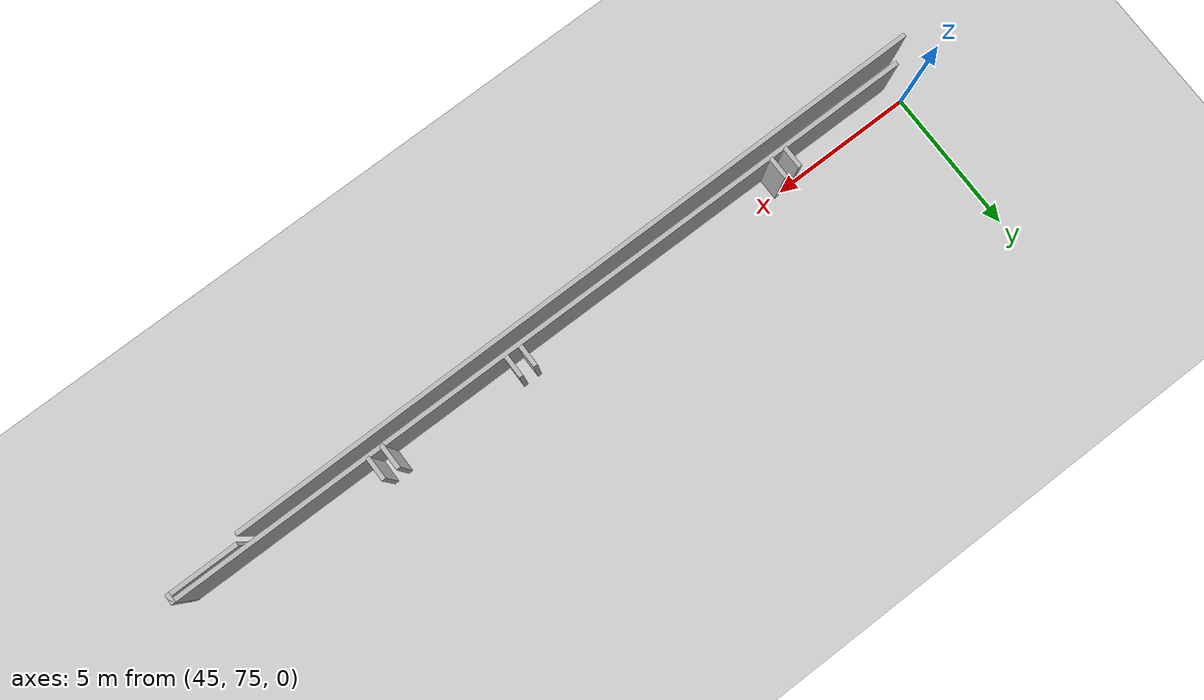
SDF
<sdf version="1.6">
 <world name="default">
  <model name="ground_plane">
   <static>1</static>
   <link name="link">
    <collision name="collision">
     <geometry><plane><normal>0 0 1</normal><size>200 100</size></plane></geometry>
     <surface><friction><ode><mu>100</mu><mu2>50</mu2></ode></friction></surface>
    </collision>
    <visual name="visual">
     <cast_shadows>0</cast_shadows>
     <geometry><plane><normal>0 0 1</normal><size>200 100</size></plane></geometry>
     <material>
      <script><uri>file://media/materials/scripts/gazebo.material</uri><name>Gazebo/Grey</name></script>
     </material>
    </visual>
   </link>
  </model>
  <model name="vgke_production">
   <link name="Wall_512">
    <pose>-48.4145 27.2522 0 0 0 -1.5708</pose>
    <visual name="Wall_512_Visual">
     <pose>0 0 1.25 0 -0 0</pose>
     <geometry><box><size>0.75 0.15 2.5</size></box></geometry>
    </visual>
    <collision name="Wall_512_Collision">
     <pose>0 0 1.25 0 -0 0</pose>
     <geometry><box><size>0.75 0.15 2.5</size></box></geometry>
    </collision>
    <inertial>
     <inertia><ixx>1</ixx><ixy>0</ixy><ixz>0</ixz><iyy>1</iyy><iyz>0</iyz><izz>1</izz></inertia>
     <mass>1</mass>
    </inertial>
   </link>
   <link name="Wall_514">
    <pose>-48.9527 27.2522 0 0 0 -1.5708</pose>
    <visual name="Wall_514_Visual">
     <pose>0 0 1.25 0 -0 0</pose>
     <geometry><box><size>0.75 0.15 2.5</size></box></geometry>
    </visual>
    <collision name="Wall_514_Collision">
     <pose>0 0 1.25 0 -0 0</pose>
     <geometry><box><size>0.75 0.15 2.5</size></box></geometry>
    </collision>
    <inertial>
     <inertia><ixx>1</ixx><ixy>0</ixy><ixz>0</ixz><iyy>1</iyy><iyz>0</iyz><izz>1</izz></inertia>
     <mass>1</mass>
    </inertial>
   </link>
   <link name="Wall_522">
    <pose>-38.4359 27.2575 0 0 0 -1.5708</pose>
    <visual name="Wall_522_Visual">
     <pose>0 0 1.25 0 -0 0</pose>
     <geometry><box><size>0.75 0.15 2.5</size></box></geometry>
    </visual>
    <collision name="Wall_522_Collision">
     <pose>0 0 1.25 0 -0 0</pose>
     <geometry><box><size>0.75 0.15 2.5</size></box></geometry>
    </collision>
    <inertial>
     <inertia><ixx>1</ixx><ixy>0</ixy><ixz>0</ixz><iyy>1</iyy><iyz>0</iyz><izz>1</izz></inertia>
     <mass>1</mass>
    </inertial>
   </link>
   <link name="Wall_524">
    <pose>-38.9634 27.2575 0 0 0 -1.5708</pose>
    <visual name="Wall_524_Visual">
     <pose>0 0 1.25 0 -0 0</pose>
     <geometry><box><size>0.75 0.15 2.5</size></box></geometry>
    </visual>
    <collision name="Wall_524_Collision">
     <pose>0 0 1.25 0 -0 0</pose>
     <geometry><box><size>0.75 0.15 2.5</size></box></geometry>
    </collision>
    <inertial>
     <inertia><ixx>1</ixx><ixy>0</ixy><ixz>0</ixz><iyy>1</iyy><iyz>0</iyz><izz>1</izz></inertia>
     <mass>1</mass>
    </inertial>
   </link>
   <link name="Wall_531">
    <pose>-33.4467 27.2182 0 0 0 -1.5708</pose>
    <visual name="Wall_531_Visual">
     <pose>0 0 1.25 0 -0 0</pose>
     <geometry><box><size>0.81928 0.15 2.5</size></box></geometry>
    </visual>
    <collision name="Wall_531_Collision">
     <pose>0 0 1.25 0 -0 0</pose>
     <geometry><box><size>0.81928 0.15 2.5</size></box></geometry>
    </collision>
    <inertial>
     <inertia><ixx>1</ixx><ixy>0</ixy><ixz>0</ixz><iyy>1</iyy><iyz>0</iyz><izz>1</izz></inertia>
     <mass>1</mass>
    </inertial>
   </link>
   <link name="Wall_533">
    <pose>-33.9756 27.1878 0 0 0 -1.5708</pose>
    <visual name="Wall_533_Visual">
     <pose>0 0 1.25 0 -0 0</pose>
     <geometry><box><size>0.880106 0.15 2.5</size></box></geometry>
    </visual>
    <collision name="Wall_533_Collision">
     <pose>0 0 1.25 0 -0 0</pose>
     <geometry><box><size>0.880106 0.15 2.5</size></box></geometry>
    </collision>
    <inertial>
     <inertia><ixx>1</ixx><ixy>0</ixy><ixz>0</ixz><iyy>1</iyy><iyz>0</iyz><izz>1</izz></inertia>
     <mass>1</mass>
    </inertial>
   </link>
   <link name="Wall_81">
    <pose>-39.9288 26.8125 0 0 0 -0.003419</pose>
    <visual name="Wall_81_Visual">
     <pose>0 0 1.25 0 -0 0</pose>
     <geometry><box><size>26.8622 0.15 2.5</size></box></geometry>
    </visual>
    <collision name="Wall_81_Collision">
     <pose>0 0 1.25 0 -0 0</pose>
     <geometry><box><size>26.8622 0.15 2.5</size></box></geometry>
    </collision>
    <inertial>
     <inertia><ixx>1</ixx><ixy>0</ixy><ixz>0</ixz><iyy>1</iyy><iyz>0</iyz><izz>1</izz></inertia>
     <mass>1</mass>
    </inertial>
   </link>
   <link name="Wall_84">
    <pose>-26.5728 26.6608 0 0 0 -1.5708</pose>
    <visual name="Wall_84_Visual">
     <pose>0 0 1.25 0 -0 0</pose>
     <geometry><box><size>0.36213 0.15 2.5</size></box></geometry>
    </visual>
    <collision name="Wall_84_Collision">
     <pose>0 0 1.25 0 -0 0</pose>
     <geometry><box><size>0.36213 0.15 2.5</size></box></geometry>
    </collision>
    <inertial>
     <inertia><ixx>1</ixx><ixy>0</ixy><ixz>0</ixz><iyy>1</iyy><iyz>0</iyz><izz>1</izz></inertia>
     <mass>1</mass>
    </inertial>
   </link>
   <link name="Wall_85">
    <pose>-26.5728 26.6608 0 0 -0 1.5708</pose>
    <visual name="Wall_85_Visual">
     <pose>0 0 1.25 0 -0 0</pose>
     <geometry><box><size>0.36213 0.15 2.5</size></box></geometry>
    </visual>
    <collision name="Wall_85_Collision">
     <pose>0 0 1.25 0 -0 0</pose>
     <geometry><box><size>0.36213 0.15 2.5</size></box></geometry>
    </collision>
    <inertial>
     <inertia><ixx>1</ixx><ixy>0</ixy><ixz>0</ixz><iyy>1</iyy><iyz>0</iyz><izz>1</izz></inertia>
     <mass>1</mass>
    </inertial>
   </link>
   <link name="Wall_87">
    <pose>-27.7478 26.5547 0 0 -0 3.14159</pose>
    <visual name="Wall_87_Visual">
     <pose>0 0 1.25 0 -0 0</pose>
     <geometry><box><size>2.5 0.15 2.5</size></box></geometry>
    </visual>
    <collision name="Wall_87_Collision">
     <pose>0 0 1.25 0 -0 0</pose>
     <geometry><box><size>2.5 0.15 2.5</size></box></geometry>
    </collision>
    <inertial>
     <inertia><ixx>1</ixx><ixy>0</ixy><ixz>0</ixz><iyy>1</iyy><iyz>0</iyz><izz>1</izz></inertia>
     <mass>1</mass>
    </inertial>
   </link>
   <link name="Wall_96">
    <pose>-41.6102 26.3022 0 0 -0 3.14159</pose>
    <visual name="Wall_96_Visual">
     <pose>0 0 1.25 0 -0 0</pose>
     <geometry><box><size>25 0.15 2.5</size></box></geometry>
    </visual>
    <collision name="Wall_96_Collision">
     <pose>0 0 1.25 0 -0 0</pose>
     <geometry><box><size>25 0.15 2.5</size></box></geometry>
    </collision>
    <inertial>
     <inertia><ixx>1</ixx><ixy>0</ixy><ixz>0</ixz><iyy>1</iyy><iyz>0</iyz><izz>1</izz></inertia>
     <mass>1</mass>
    </inertial>
   </link>
   <pose>98.6 47.426 0.01 0 0 0</pose>
  </model>
 </world>
</sdf>
